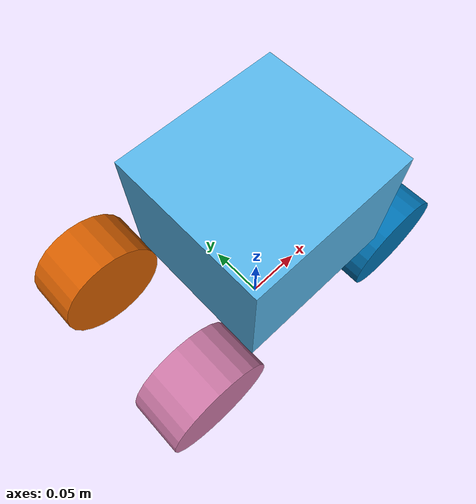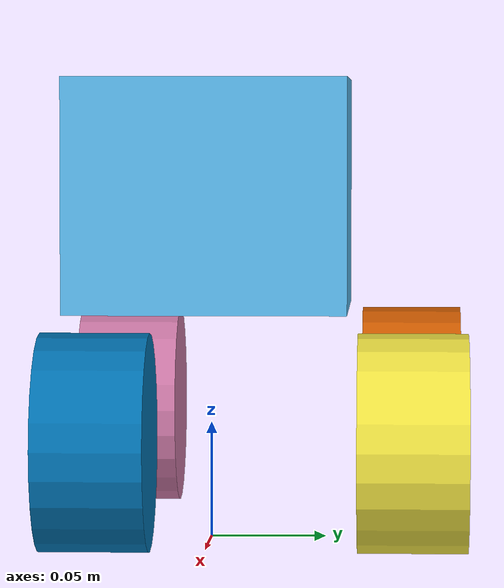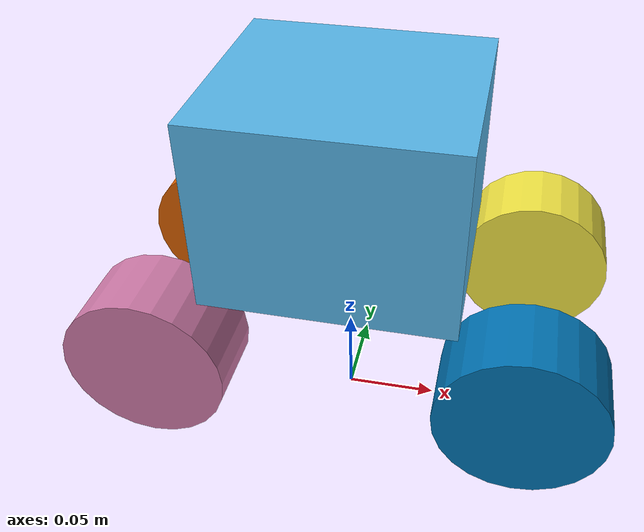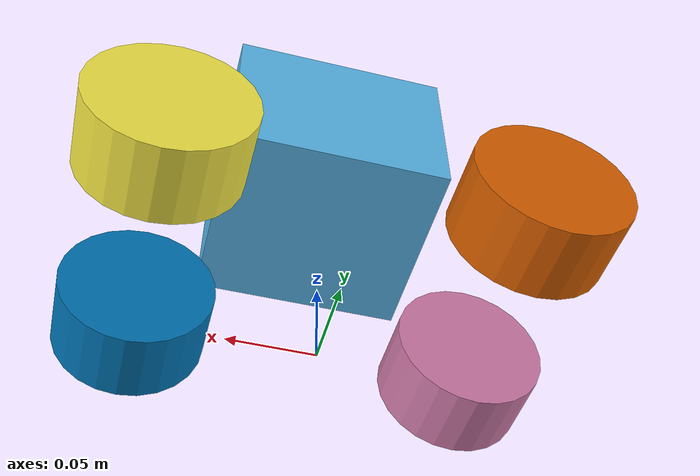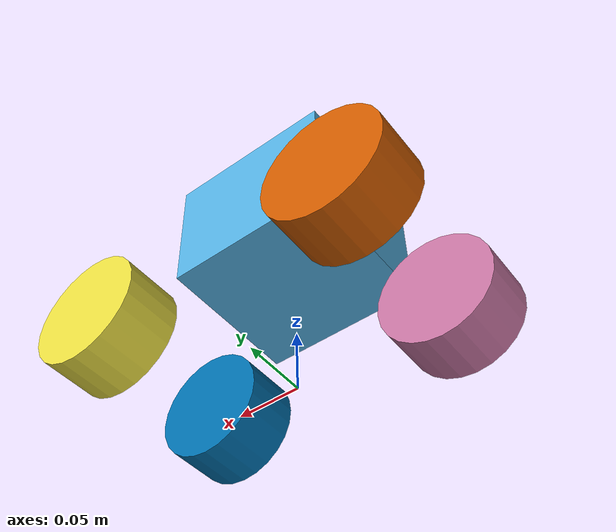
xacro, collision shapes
<?xml version="1.0"?>
<robot name="limo_four_diff" xmlns:xacro="http://ros.org/wiki/xacro">
    <xacro:include filename="$(find gazebo)/urdf/limo_xacro.xacro" />
    <xacro:include filename="$(find gazebo)/urdf/limo_four_diff.gazebo" />

    <!-- Variables -->
    <xacro:property name="M_PI" value="3.14159"/>

    <!-- Vehicle Geometries -->
    <xacro:property name="base_x_size" value="0.13" />
    <xacro:property name="base_y_size" value="0.12" />
    <xacro:property name="base_z_size" value="0.1" />

    <xacro:property name="wheelbase" value="0.2"/>
    <xacro:property name="track" value="0.13"/>
    <xacro:property name="wheel_vertical_offset" value="-0.10" />
    <xacro:property name="base_mass" value="2.1557"/>

    <xacro:property name="wheel_length" value="0.045" />
    <xacro:property name="wheel_radius" value="0.045" />

    <link name="base_footprint"/>

    <joint name="base_joint" type="fixed">
        <parent link="base_footprint"/>
        <child link="base_link"/>
        <origin xyz="0.0 0.0 0.15" rpy="0 0 0"/>
    </joint>

    <!-- Base link -->
    <link name="base_link">
        <visual>
            <origin xyz="0 0 -0.15" rpy="0 0 1.57" />
            <geometry>
                <mesh filename="package://gazebo/meshes/limo_base_decimated.dae" scale="1 1 1"/>
            </geometry>
        </visual>
        <collision>
            <origin xyz="0 0 0" rpy="0 0 0" />
            <geometry>
                <box size="${base_x_size} ${base_y_size} ${base_z_size}"/>
            </geometry>
        </collision>
    </link>

    <link name="inertial_link">
        <inertial>
            <origin xyz="0.0 0.0 0.0" />
            <mass value="${base_mass}" />
            <inertia
                ixx="0.01" ixy="0.0" ixz="0.0"
                iyy="0.01" iyz="0.0"
                izz="0.01" />
        </inertial>
    </link>

    <joint name="inertial_joint" type="fixed">
        <parent link="base_link" />
        <child link="inertial_link" />
        <origin xyz="0.0 0.0 0.0" rpy="0 0 0" />
    </joint>

    <!-- Wheels -->
    <xacro:limo_wheel parent_prefix="base_link" wheel_prefix="front_left" reflect="1">
        <origin xyz="${wheelbase/2} ${track/2} ${wheel_vertical_offset}" rpy="0 0 0"/>
    </xacro:limo_wheel>

    <xacro:limo_wheel parent_prefix="base_link" wheel_prefix="front_right" reflect="-1">
        <origin xyz="${wheelbase/2} ${-track/2} ${wheel_vertical_offset}" rpy="0 0 0"/>
    </xacro:limo_wheel>

    <xacro:limo_wheel parent_prefix="base_link" wheel_prefix="rear_left" reflect="1">
        <origin xyz="${-wheelbase/2} ${track/2} ${wheel_vertical_offset}" rpy="0 0 0"/>
    </xacro:limo_wheel>

    <xacro:limo_wheel parent_prefix="base_link" wheel_prefix="rear_right" reflect="-1">
        <origin xyz="${-wheelbase/2} ${-track/2} ${wheel_vertical_offset}" rpy="0 0 0"/>
    </xacro:limo_wheel>
</robot>

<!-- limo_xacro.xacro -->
<robot name="limo_xacro" xmlns:xacro="http://ros.org/wiki/xacro">
    <xacro:macro name="limo_wheel" params="parent_prefix wheel_prefix reflect *joint_pose">
        <link name="${wheel_prefix}_wheel_link">
            <inertial>
                <origin xyz="0 0 0" />
                <mass value="0.5" />
                <inertia ixx="0.01055" ixy="0" ixz="0" iyy="0.00075" iyz="0" izz="0.01055" />
            </inertial>
            <visual>
                <origin xyz="0 0 0" rpy="0 0 0" />
                <geometry>
                    <mesh filename="package://gazebo/meshes/limo_wheel.dae"/>
                </geometry>
            </visual>
            <collision>
              <origin xyz="0 ${wheel_length/2} 0" rpy="1.57 0 0" />
              <geometry>
                  <cylinder length="${wheel_length}" radius="${wheel_radius}" />
              </geometry>
            </collision>
        </link>

        <joint name="${wheel_prefix}_wheel" type="continuous">
            <parent link="${parent_prefix}"/>
            <child link="${wheel_prefix}_wheel_link"/>
            <xacro:insert_block name="joint_pose"/>
            <axis xyz="0 ${reflect*1} 0"/>
        </joint>

        <gazebo reference="${wheel_prefix}_wheel_link">
            <mu>0.2</mu>
            <mu2>0.2</mu2>
            <fdir1>0 ${reflect*1} 0</fdir1>
        </gazebo>
    </xacro:macro>

    <xacro:macro name="limo_laser" params="parent_prefix frame_prefix *joint_pose">
        <link name='${frame_prefix}_link'>
            <pose>0 0 0 0 0 0</pose>
            <inertial>
                <mass value="0.1"/>
                <origin xyz="0.0 0 0" rpy="0 0 0"/>
                <inertia
                    ixx="1e-6" ixy="0" ixz="0"
                    iyy="1e-6" iyz="0"
                    izz="1e-6"
                />
            </inertial>
            <visual name='laser_visual'>
                <origin xyz="0 0 0" rpy="0 0 0"/>
                <geometry>
                    <cylinder length="0.05" radius="0.05"/>
                </geometry>
                <material name="black">
                    <color rgba="0.1 0.1 0.1 1"/>
                </material>
            </visual>
        </link>

        <joint name="${frame_prefix}_joint" type="fixed">
            <parent link="${parent_prefix}"/>
            <child link="${frame_prefix}_link"/>
            <xacro:insert_block name="joint_pose"/>
        </joint>
    </xacro:macro>

    <xacro:macro name="limo_camera" params="parent_prefix frame_prefix *joint_pose">
        <link name='${frame_prefix}_link'>
            <pose>0 0 0 0 0 0</pose>
            <inertial>
                <mass value="0.1"/>
                <origin xyz="0.0 0 0" rpy="0 0 0"/>
                <inertia
                    ixx="1e-6" ixy="0" ixz="0"
                    iyy="1e-6" iyz="0"
                    izz="1e-6"
                />
            </inertial>
            <visual name='camera_visual'>
                <origin xyz="0 0 0" rpy="0 0 0"/>
                <geometry>
                    <box size="0.05 0.05 0.05"/>
                </geometry>
                <material name="black">
                    <color rgba="0.1 0.1 0.1 1"/>
                </material>
            </visual>
        </link>

        <joint name="${frame_prefix}_joint" type="fixed">
            <parent link="${parent_prefix}"/>
            <child link="${frame_prefix}_link"/>
            <xacro:insert_block name="joint_pose"/>
        </joint>
    </xacro:macro>

    <xacro:macro name="limo_depth_camera" params="parent_prefix frame_prefix *joint_pose">
        <link name='${frame_prefix}_link'>
            <pose>0 0 0 0 0 0</pose>
            <inertial>
                <mass value="0.1"/>
                <origin xyz="0.0 0 0" rpy="0 0 0"/>
                <inertia
                    ixx="1e-6" ixy="0" ixz="0"
                    iyy="1e-6" iyz="0"
                    izz="1e-6"
                />
            </inertial>
            <visual name='depth_camera_visual'>
                <origin xyz="0 0 0" rpy="0 0 0"/>
                <geometry>
                    <box size="0.05 0.05 0.05"/>
                </geometry>
                <material name="blue">
                    <color rgba="0 0 1 0.5"/>
                </material>
            </visual>
        </link>

        <joint name="${frame_prefix}_joint" type="fixed">
            <parent link="${parent_prefix}"/>
            <child link="${frame_prefix}_link"/>
            <xacro:insert_block name="joint_pose"/>
        </joint>
    </xacro:macro>
</robot>
